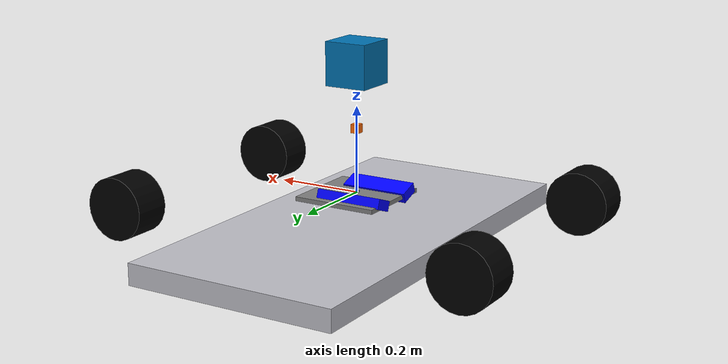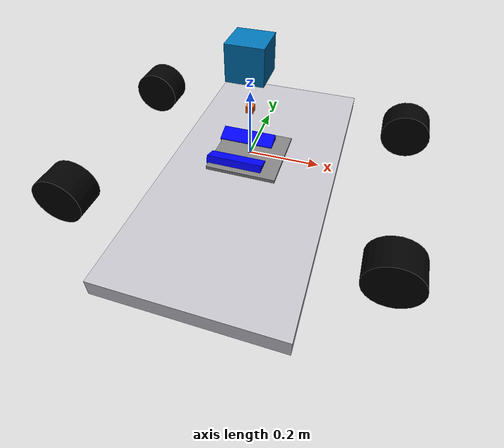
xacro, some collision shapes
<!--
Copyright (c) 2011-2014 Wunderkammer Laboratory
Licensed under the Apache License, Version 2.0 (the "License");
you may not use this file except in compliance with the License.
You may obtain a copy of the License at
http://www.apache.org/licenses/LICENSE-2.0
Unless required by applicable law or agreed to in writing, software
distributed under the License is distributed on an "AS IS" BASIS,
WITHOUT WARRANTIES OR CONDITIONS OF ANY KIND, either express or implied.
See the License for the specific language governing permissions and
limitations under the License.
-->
<?xml version="1.0"?>

<robot name="em_3905" xmlns:xacro="http://www.ros.org/wiki/xacro">
 <xacro:property name="cameraSize" value="0.05"/>
 <xacro:property name="cameraMass" value="0.1"/>
  <!-- Degree-to-radian conversions -->
 <xacro:property name="degrees_45" value="0.785398163"/>
  <xacro:property name="degrees_90" value="1.57079633"/>

  <!-- chassis_length is measured along the x axis, chassis_width
       along the y axis, and chassis_height along the z axis. -->
  <xacro:property name="chassis_length" value="0.2"/>
  <xacro:property name="chassis_width" value="0.2"/>
  <xacro:property name="chassis_height" value="0.01"/>
  <xacro:property name="chassis_mass" value="2.788"/>

  <xacro:property name="battery_x_offset" value="0.055"/>
  <xacro:property name="battery_dist" value="0.065"/>
  <xacro:property name="battery_comp_depth" value="0.02"/>
  <xacro:property name="battery_comp_angle" value="0.34906585"/>
  <xacro:property name="battery_length" value="0.16"/>
  <xacro:property name="battery_width" value="0.047"/>
  <xacro:property name="battery_height" value="0.024"/>
  <xacro:property name="battery_mass" value="0.5025"/>

  <xacro:property name="hub_dia" value="0.09652"/> <!-- tekerin ic capi -->
  <xacro:property name="tire_dia" value="0.14605"/> <!-- tekerin dis capi -->
  <xacro:property name="tire_width" value="0.0889"/>  <!-- teker kalinligi -->
  <xacro:property name="hex_hub_depth" value="0.01445"/>
  <xacro:property name="wheel_mass" value="0.29"/>

  <xacro:property name="wheelbase" value="0.865"/> <!-- iki teker arasi mesafe (uzunlama) +0.5 -->
  <xacro:property name="hex_hub_dist" value="0.635"/> <!-- iki teker arasi mesafe (en)  +0.5-->
  <xacro:property name="axle_length" value="0.03"/>
  <xacro:property name="wheel_travel" value="0.084"/> <!-- tekerin dikey hareketi -->
  <xacro:property name="shock_z_offset" value="0.0655"/>

  <xacro:property name="shock_eff_limit" value="12.5106"/>
  <xacro:property name="shock_vel_limit" value="1000"/>

  <xacro:property name="axle_eff_limit" value="5.12766"/>
  <xacro:property name="axle_vel_limit" value="244.8696"/>

  <!-- These constants are used to simulate a Traxxas 2056 servo operated at
       6 V. servo_stall_torque is measured in N m. servo_no_load_speed is
       measured in rad/s. -->
  <xacro:property name="servo_stall_torque" value="0.5649"/>
  <xacro:property name="servo_no_load_speed" value="4.553"/>

  <material name="battery_mat">
    <color rgba="0 0 1 1"/>
  </material>
  <material name="chassis_mat">
    <color rgba="0.5 0.5 0.5 1"/>
  </material>
  <material name="tire_mat">
    <color rgba="0 0 0 1"/>
  </material>
  <material name="blue">
    <color rgba="0 0 0.8 1"/>
  </material>

  <!-- Null inertial element. This is needed to make the model work with
       Gazebo. -->
  <xacro:macro name="null_inertial">
    <inertial>
      <mass value="0.001"/>
      <inertia ixx="0.001" ixy="0" ixz="0" iyy="0.001" iyz="0" izz="0.001"/>
    </inertial>
  </xacro:macro>

  <!-- Inertia of a solid cuboid. Width is measured along the x axis, depth
       along the y axis, and height along the z axis. -->
  <xacro:macro name="solid_cuboid_inertial"
               params="width depth height mass *origin">
    <inertial>
      <xacro:insert_block name="origin"/>
      <mass value="${mass}"/>
      <inertia ixx="${mass * (depth * depth + height * height) / 12}"
               ixy="0" ixz="0"
               iyy="${mass * (width * width + height * height) / 12}"
               iyz="0"
               izz="${mass * (width * width + depth * depth) / 12}"/>
    </inertial>
  </xacro:macro>

  <xacro:macro name="thick_walled_tube_inertial"
               params="inner_rad outer_rad height mass">
    <inertial>
      <mass value="${mass}"/>
      <inertia ixx="${(1 / 12) * mass * (3 * (inner_rad * inner_rad +
                    outer_rad * outer_rad) + height * height)}"
               ixy="0" ixz="0"
               iyy="${(1 / 12) * mass * (3 * (inner_rad * inner_rad +
                    outer_rad * outer_rad) + height * height)}"
               iyz="0"
               izz="${mass * (inner_rad * inner_rad +
                    outer_rad * outer_rad) / 2}"/>
    </inertial>
  </xacro:macro>

  <!-- Battery -->
  <xacro:macro name="battery" params="prefix reflect">
    <joint name="chassis_to_${prefix}_battery" type="fixed">
      <parent link="chassis"/>
      <child link="${prefix}_battery_offset"/>
      <origin xyz="${battery_x_offset - battery_length / 2}
                   ${reflect * battery_dist / 2}
                   0"
              rpy="${reflect * battery_comp_angle} 0 0"/>
    </joint>

    <link name="${prefix}_battery_offset">
      <xacro:null_inertial/>
    </link>

    <joint name="offset_to_${prefix}_battery" type="fixed">
      <parent link="${prefix}_battery_offset"/>
      <child link="${prefix}_battery"/>
      <origin xyz="0
                   ${reflect * battery_width / 2}
                   ${(battery_height / 2) - battery_comp_depth}"/>
    </joint>

    <link name="${prefix}_battery">
      <visual>
        <geometry>
          <box size="${battery_length} ${battery_width} ${battery_height}"/>
        </geometry>
        <material name="battery_mat"/>
      </visual>

      <collision>
        <geometry>
          <box size="${battery_length} ${battery_width} ${battery_height}"/>
        </geometry>
      </collision>

      <xacro:solid_cuboid_inertial
         width="${battery_length}" depth="${battery_width}"
         height="${battery_height}" mass="${battery_mass}">
        <origin/>
      </xacro:solid_cuboid_inertial>
    </link>

    <gazebo reference="${prefix}_battery">
      <material>Gazebo/Blue</material>
    </gazebo>
  </xacro:macro>

  <!-- Shock absorber -->
  <xacro:macro name="shock"
               params="lr_prefix fr_prefix lr_reflect fr_reflect child">
    <joint name="${lr_prefix}_${fr_prefix}_shock" type="prismatic">
      <parent link="chassis"/>
      <child link="${child}"/>

      <origin xyz="${fr_reflect * wheelbase / 2}
                   ${lr_reflect * ((hex_hub_dist / 2) - axle_length)}
                   ${(wheel_travel / 2) - shock_z_offset}"/>
      <axis xyz="0 0 -1"/>
      <limit lower="${-wheel_travel / 2}" upper="${wheel_travel / 2}"
             effort="${shock_eff_limit}" velocity="${shock_vel_limit}"/>
    </joint>
    <transmission name="${lr_prefix}_${fr_prefix}_shock_trans">
      <type>transmission_interface/SimpleTransmission</type>
      <joint name="${lr_prefix}_${fr_prefix}_shock">
        <hardwareInterface>EffortJointInterface</hardwareInterface>
      </joint>
      <actuator name="${lr_prefix}_${fr_prefix}_shock_act">
        <!-- This hardwareInterface element exists for compatibility
             with ROS Hydro. -->
        <hardwareInterface>EffortJointInterface</hardwareInterface>
        <mechanicalReduction>1</mechanicalReduction>
      </actuator>
    </transmission>
  </xacro:macro>

  <!-- The "wheel" macro defines an axle carrier, axle, and wheel. -->
  <xacro:macro name="wheel" params="lr_prefix fr_prefix lr_reflect">
    <link name="${lr_prefix}_${fr_prefix}_axle_carrier">
      <xacro:null_inertial/>
    </link>

    <!-- The left and right axles have the same axis so that identical
         rotation values cause the wheels to rotate in the same direction. -->
    <joint name="${lr_prefix}_${fr_prefix}_axle" type="continuous">
      <parent link="${lr_prefix}_${fr_prefix}_axle_carrier"/>
      <child link="${lr_prefix}_${fr_prefix}_wheel"/>
      <origin rpy="${degrees_90} 0 0"/>
      <axis xyz="0 0 -1"/>
      <limit effort="${axle_eff_limit}" velocity="${axle_vel_limit}"/>
    </joint>
    <transmission name="${lr_prefix}_${fr_prefix}_axle_trans">
      <type>transmission_interface/SimpleTransmission</type>
      <joint name="${lr_prefix}_${fr_prefix}_axle">
        <hardwareInterface>EffortJointInterface</hardwareInterface>
      </joint>
      <actuator name="${lr_prefix}_${fr_prefix}_axle_act">
        <!-- This hardwareInterface element exists for compatibility
             with ROS Hydro. -->
        <hardwareInterface>EffortJointInterface</hardwareInterface>
        <mechanicalReduction>1</mechanicalReduction>
      </actuator>
    </transmission>

    <link name="${lr_prefix}_${fr_prefix}_wheel">
      <visual>

        <origin xyz="0
                     ${lr_reflect * (axle_length - (tire_width /
                     2 - hex_hub_depth))}
                     0"/>
        <geometry>
          <cylinder radius="${tire_dia / 2}" length="${tire_width}"/>
          <!--mesh filename="package://ackermann_vehicle_description/meshes1/wheel.obj" scale="0.005 0.005 0.005"/-->
        </geometry>
        <material name="tire_mat"/>
      </visual>

      <collision>
        <origin xyz="0 0 0" rpy="0 0 0"/>
        <origin xyz="0
                     ${lr_reflect * (axle_length - (tire_width /
                     2 - hex_hub_depth))}
                     0"/>
        <geometry>
          <cylinder radius="${tire_dia / 2}" length="${tire_width}"/>
          <!--mesh filename="package://ackermann_vehicle_description/meshes1/wheel.obj" scale="0.005 0.005 0.005"/-->
        </geometry>
      </collision>

      <xacro:thick_walled_tube_inertial
          inner_rad="${hub_dia / 2}" outer_rad="${tire_dia / 2}"
          height="${tire_width}" mass="${wheel_mass}"/>
    </link>

    <gazebo reference="${lr_prefix}_${fr_prefix}_wheel">
      <material>Gazebo/Black</material>
    </gazebo>
  </xacro:macro>

  <!-- Front wheel -->
  <xacro:macro name="front_wheel"
               params="lr_prefix fr_prefix lr_reflect fr_reflect">
    <xacro:shock lr_prefix="${lr_prefix}" fr_prefix="${fr_prefix}"
                 lr_reflect="${lr_reflect}" fr_reflect="${fr_reflect}"
                 child="${lr_prefix}_steering_link"/>

    <link name="${lr_prefix}_steering_link">
      <xacro:null_inertial/>
    </link>

    <joint name="${lr_prefix}_steering_joint" type="revolute">
      <parent link="${lr_prefix}_steering_link"/>
      <child link="${lr_prefix}_${fr_prefix}_axle_carrier"/>
      <axis xyz="0 0 1"/>
      <limit lower="${-degrees_45}" upper="${degrees_45}"
             effort="${servo_stall_torque}" velocity="${servo_no_load_speed}"/>
    </joint>
    <transmission name="${lr_prefix}_steering_trans">
      <type>transmission_interface/SimpleTransmission</type>
      <joint name="${lr_prefix}_steering_joint">
        <hardwareInterface>EffortJointInterface</hardwareInterface>
      </joint>
      <actuator name="${lr_prefix}_steering_act">
        <!-- This hardwareInterface element exists for compatibility
             with ROS Hydro. -->
        <hardwareInterface>EffortJointInterface</hardwareInterface>
        <mechanicalReduction>1</mechanicalReduction>
      </actuator>
    </transmission>

    <xacro:wheel lr_prefix="${lr_prefix}" fr_prefix="${fr_prefix}"
                 lr_reflect="${lr_reflect}"/>
  </xacro:macro>

  <!-- Rear wheel -->
  <xacro:macro name="rear_wheel"
               params="lr_prefix fr_prefix lr_reflect fr_reflect">
    <xacro:shock lr_prefix="${lr_prefix}" fr_prefix="${fr_prefix}"
                 lr_reflect="${lr_reflect}" fr_reflect="${fr_reflect}"
                 child="${lr_prefix}_${fr_prefix}_axle_carrier"/>
    <xacro:wheel lr_prefix="${lr_prefix}" fr_prefix="${fr_prefix}"
                 lr_reflect="${lr_reflect}"/>
  </xacro:macro>

  <!-- base_link must have geometry so that its axes can be displayed in
       rviz. -->
  <link name="base_link">
    <visual>
      <geometry>
        <box size="0.01 0.01 0.01"/>
      </geometry>
      <material name="chassis_mat"/>
    </visual>
  </link>
  <gazebo reference="base_link">
    <material>Gazebo/Grey</material>
  </gazebo>

  <!-- Chassis -->
  <link name="chassis">
    <visual>
      <origin xyz="0 0 ${-chassis_height / 2}"/>
      <geometry>
        <box size="${chassis_length} ${chassis_width} ${chassis_height}"/>
      </geometry>
      <material name="chassis_mat"/>
    </visual>

    <collision>
      <origin xyz="0 0 ${-chassis_height / 2}"/>
      <geometry>
        <box size="${chassis_length} ${chassis_width} ${chassis_height}"/>
      </geometry>
    </collision>

    <xacro:solid_cuboid_inertial
        width="${chassis_length}" depth="${chassis_width}"
        height="${chassis_height}" mass="${chassis_mass}">
      <origin xyz="0 0 ${-chassis_height / 2}"/>
    </xacro:solid_cuboid_inertial>
  </link>
  <gazebo reference="chassis">
    <material>Gazebo/Grey</material>
  </gazebo>

  <joint name="base_link_to_chassis" type="fixed">
    <parent link="base_link"/>
    <child link="chassis"/>
  </joint>

  <!-- Batteries -->
  <xacro:battery prefix="left" reflect="1"/>
  <xacro:battery prefix="right" reflect="-1"/>

  <!-- Wheels -->
  <xacro:front_wheel lr_prefix="left" fr_prefix="front"
                     lr_reflect="1" fr_reflect="1"/>
  <xacro:front_wheel lr_prefix="right" fr_prefix="front"
                     lr_reflect="-1" fr_reflect="1"/>
  <xacro:rear_wheel lr_prefix="left" fr_prefix="rear"
                    lr_reflect="1" fr_reflect="-1"/>
  <xacro:rear_wheel lr_prefix="right" fr_prefix="rear"
                    lr_reflect="-1" fr_reflect="-1"/>

       <link name="xxx">
                      <visual>
                        <origin xyz="0 0 -0.08" rpy="0 0 1.57079632679"/>
                        <geometry>
                          <mesh filename="package://ackermann_vehicle_description/meshes/body13.dae" scale="0.30 0.30 0.30"/>
                        </geometry>
                      </visual>

                      <collision name="xxx">
                        <origin xyz="0 0 0" rpy="0 0 1.57079632679"/>
                        <geometry>
                          <box size="1 0.5 0.05"/>
                        </geometry>
                      </collision>

                      <inertial>
                        <mass value="0.1" />
                        <origin xyz="0 0 0" rpy="0 0 1.57079632679"/>
                        <inertia ixx="1e-6" ixy="0" ixz="0" iyy="1e-6" iyz="0" izz="1e-6" />
                      </inertial>
                    </link>

                    <joint name="x" type="fixed">
                      <origin xyz="0.0 0.0 -0.090" rpy="0 0 0"/>
                      <parent link="chassis"/>
                      <child link="xxx"/>
                      <axis xyz="0 0 0"/>
                    </joint>

    <!-- Camera sensor -->
    <link name="camera">
      <collision>
        <origin xyz="0 0 0 " rpy="0 0 0"/>
        <geometry>
          <box size="${cameraSize} ${cameraSize} ${cameraSize}"/>
        </geometry>
      </collision>

      <visual>
        <origin xyz="0 0 0" rpy="0 0 0"/>
        <geometry>
          <box size="${cameraSize} ${cameraSize} ${cameraSize}"/>
        </geometry>
        <material name="orange"/>
      </visual>
      <inertial>
        <mass value="${cameraMass}" />
        <origin xyz="0 0 0" rpy="0 0 0"/>
        <box_inertia m="${cameraMass}" x="${cameraSize}" y="${cameraSize}" z="${cameraSize}" />
        <inertia ixx="1e-6" ixy="0" ixz="0" iyy="1e-6" iyz="0" izz="1e-6" />
      </inertial>
    </link>

    <joint name="camera_joint" type="fixed">
      <axis xyz="0 1 0" />
      <origin xyz="0 0 0.3" rpy="0 0 0"/>
      <parent link="chassis"/>
      <child link="camera"/>
    </joint>
    <gazebo reference="camera">
      <material>Gazebo/Green</material>
      <sensor type="camera" name="camera1">
        <update_rate>30.0</update_rate>
        <camera name="head">
          <horizontal_fov>1.3962634</horizontal_fov>
          <image>
            <width>800</width>
            <height>800</height>
            <format>R8G8B8</format>
          </image>
          <clip>
            <near>0.02</near>
            <far>300</far>
          </clip>
        </camera>
        <plugin name="camera_controller" filename="libgazebo_ros_camera.so">
          <alwaysOn>true</alwaysOn>
          <updateRate>0.0</updateRate>
          <cameraName>Ackerman/camera1</cameraName>
          <imageTopicName>image_raw</imageTopicName>
          <cameraInfoTopicName>camera_info</cameraInfoTopicName>
          <frameName>camera</frameName>
          <hackBaseline>0.07</hackBaseline>
          <distortionK1>0.0</distortionK1>
          <distortionK2>0.0</distortionK2>
          <distortionK3>0.0</distortionK3>
          <distortionT1>0.0</distortionT1>
          <distortionT2>0.0</distortionT2>
        </plugin>
      </sensor>
    </gazebo>
    <!-- imu sensor -->
     <link name="imu_link">
       <visual>
         <geometry>
           <box size="0.01 0.01 0.01"/>
         </geometry>
         <material name="orange"/>
       </visual>

       <collision>
         <geometry>
           <box size="0.01 0.01 0.01"/>
         </geometry>
       </collision>

       <inertial>
         <mass value="0.1" />
         <origin xyz="0 0 0" rpy="0 0 0"/>
         <inertia ixx="1e-6" ixy="0" ixz="0" iyy="1e-6" iyz="0" izz="1e-6" />
       </inertial>

     </link>

     <gazebo reference="imu_link">
       <gravity>true</gravity>
       <sensor name="imu_sensor" type="imu">
         <always_on>true</always_on>
         <update_rate>100</update_rate>
         <visualize>true</visualize>
         <topic>__default_topic__</topic>
         <plugin filename="libgazebo_ros_imu_sensor.so" name="imu_plugin">
           <topicName>imu</topicName>
           <bodyName>imu_link</bodyName>
           <updateRateHZ>10.0</updateRateHZ>
           <gaussianNoise>0.0</gaussianNoise>
           <xyzOffset>0 0 0</xyzOffset>
           <rpyOffset>0 0 0</rpyOffset>
           <frameName>imu_link</frameName>
         </plugin>
         <pose>0 0 0 0 0 0</pose>
       </sensor>
     </gazebo>

     <joint name="imu_joint" type="fixed">
       <origin xyz="0 0 0.15" rpy="0 0 0"/>
       <parent link="chassis"/>
       <child link="imu_link"/>
     </joint>

  <!-- gps sensor -->
  <gazebo>
    <plugin name="gazebo_ros_gps" filename="libhector_gazebo_ros_gps.so">
      <updateRate>4.0</updateRate>
      <bodyName>gps_link</bodyName>
      <frameId>gps_link</frameId>
      <topicName>/gps/fix</topicName>
      <velocityTopicName>/gps/fix_velocity</velocityTopicName>
      <referenceLatitude>-30.06022459407145675</referenceLatitude>
      <referenceLongitude>-51.173913575780311191</referenceLongitude>
      <referenceHeading>90</referenceHeading>
      <referenceAltitude>10</referenceAltitude>
      <offset>0 0 0</offset>
      <drift>0.001 0.001 0.001</drift>
      <gaussianNoise>0.05 0.05 0.05</gaussianNoise>
      <velocityDrift>0.001 0.001 0.001</velocityDrift>
      <velocityGaussianNoise>0.5 0.5 0.5</velocityGaussianNoise>
    </plugin>
  </gazebo>

   <link name="gps_link">
    <collision>
      <origin xyz="0 0 0" rpy="0 0 0"/>
      <geometry>
        <box size="0.02 0.02 0.02"/>
      </geometry>
    </collision>

    <visual>
      <origin xyz="0 0 0" rpy="0 0 0"/>
      <geometry>
        <box size="0.02 0.02 0.02"/>
      </geometry>
      <material name="orange"/>
    </visual>

    <inertial>
      <origin xyz="0 0 0" rpy="0 0 0"/>
      <mass value="0.1"/>
      <inertia
        ixx="1.0" ixy="0.0" ixz="0.0"
        iyy="1.0" iyz="0.0"
        izz="1.0"/>
    </inertial>
   </link>

   <joint name="gps_joint" type="fixed">
     <origin xyz="0 0 0.15" rpy="0 0 0"/>
     <parent link="chassis"/>
     <child link="gps_link"/>
   </joint>

   <material name="orange">
     <color rgba="${255/255} ${108/255} ${10/255} 1.0"/>
   </material>
   <gazebo reference="gps_link">
     <material>Gazebo/Orange</material>
   </gazebo>
   <gazebo reference="camera_frame">
     <material>Gazebo/Orange</material>
   </gazebo>
   <gazebo reference="imu_link">
     <material>Gazebo/Orange</material>
   </gazebo>
  <gazebo reference="xxx">
     <material>Gazebo/Silver</material>
   </gazebo>

  <!-- Hokuyo Laser -->
  <xacro:include filename="$(find ackermann_vehicle_description)/urdf/lidar.gazebo"/>

  <link name="hokuyo">
    <collision>
      <origin xyz="0 0 0" rpy="0 0 0"/>
      <geometry>
        <box size="0.1 0.1 0.1"/>
      </geometry>
    </collision>

    <visual>
      <origin xyz="0 0 0" rpy="0 0 0"/>
      <geometry>
        <mesh filename="package://ackermann_vehicle_description/meshes/hokuyo.dae"/>
      </geometry>
    </visual>

    <inertial>
      <mass value="1e-5" />
      <origin xyz="0 0 0" rpy="0 0 0"/>
      <inertia ixx="1e-6" ixy="0" ixz="0" iyy="1e-6" iyz="0" izz="1e-6" />
    </inertial>
  </link>

  <joint name="hokuyo_joint" type="fixed">
    <origin xyz="0 0 0.3" rpy="0 0 0"/>
    <parent link="chassis"/>
    <child link="hokuyo"/>
  </joint>

  <gazebo>
    <plugin name="gazebo_ros_control" filename= "libgazebo_ros_control.so">
     <robotNamespace>/</robotNamespace>
     <legacyModeNS>true</legacyModeNS>
    </plugin>
  </gazebo>

</robot>
